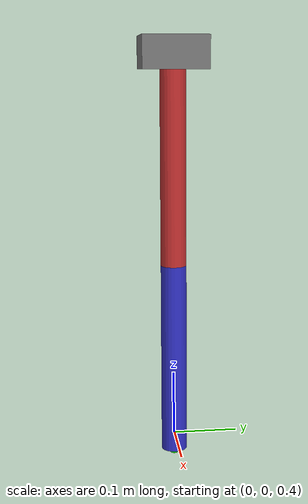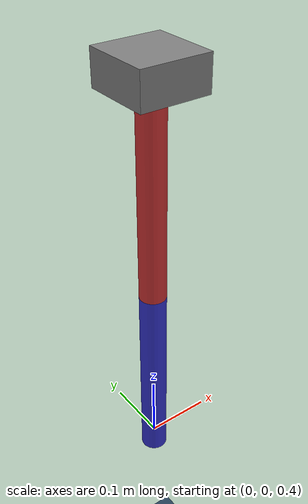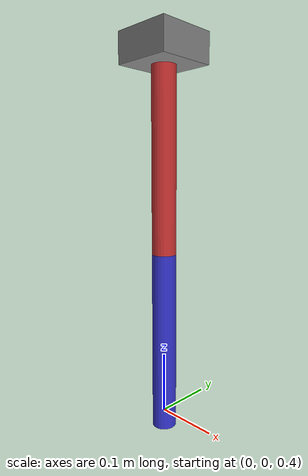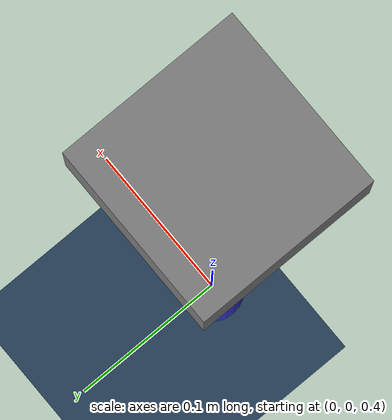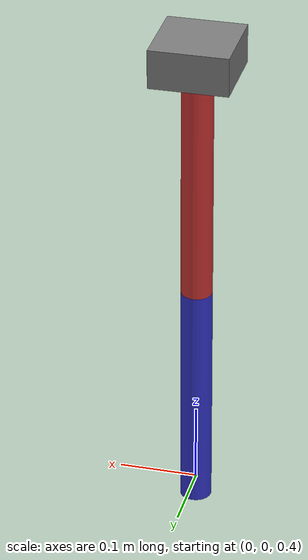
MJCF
<mujoco model="two_link_arm_scene">
  <include file="two_link_arm_v2.xml"/>

  <statistic center="0 0 0.6" extent="1.6"/>

  <visual>
    <headlight diffuse="0.6 0.6 0.6" ambient="0.3 0.3 0.3" specular="0 0 0"/>
    <global azimuth="140" elevation="-20"/>
  </visual>

  <asset>
    <texture type="2d" name="groundplane" builtin="checker" mark="edge" rgb1="0.2 0.3 0.4" rgb2="0.1 0.2 0.3"
             markrgb="0.8 0.8 0.8" width="300" height="300"/>
    <material name="groundplane" texture="groundplane" texuniform="true" texrepeat="5 5" reflectance="0.2"/>
  </asset>

  <worldbody>
    <light pos="0 0 2.5" dir="0 0 -1" directional="true"/>
    <camera name="side" pos="1.5 -1.5 0.8" xyaxes="1 1 0 0 0 1"/>
    <geom name="floor" type="plane" size="0 0 0.05" material="groundplane"/>
  </worldbody>
</mujoco>

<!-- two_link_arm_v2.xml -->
<mujoco model="two_link_arm_v2">

  <!-- compiler: angle=radian (URDF와 동일 단위), autolimits: range 를 주면 limited 자동 -->
  <compiler angle="radian" autolimits="true"/>

  <!-- option: 적분 주기 1 ms (관절 1 kHz 제어 주기와 맞춤), implicitfast 는 damping·armature 가 커도 안정 -->
  <option timestep="0.001" integrator="implicitfast" gravity="0 0 -9.81"/>

  <!-- default class: 같은 속성을 한 곳에서 관리. body 에 childclass="arm" 을 주면 자식 전체가 상속 -->
  <default>
    <default class="arm">
      <!-- 모든 관절: Y축 힌지, 점성 감쇠 0.1 N·m·s/rad. armature(로터 반영 관성)는 실험용으로 0 에서 시작 -->
      <joint type="hinge" axis="0 1 0" damping="0.1" armature="0" frictionloss="0"/>
      <!-- 링크 형상: 반지름 0.02 m · 반길이 0.15 m 실린더, 링크 프레임 -Z 로 늘어짐 -->
      <geom type="cylinder" size="0.02 0.15" pos="0 0 -0.15"/>
      <!-- visual / collision 분리 (4주차 STL 분리 대비): group 2 = 시각 전용, group 3 = 충돌 전용 -->
      <default class="visual">
        <geom contype="0" conaffinity="0" group="2"/>
      </default>
      <default class="collision">
        <geom group="3" rgba="0.6 0.6 0.6 0.3"/>
      </default>
      <!-- position 액추에이터 기본값: τ = kp·(ctrl − q) − kv·q̇, ctrlrange 는 joint range 상속, 토크 한계 ±25 N·m -->
      <position kp="20" kv="0" inheritrange="1" forcerange="-25 25"/>
    </default>
  </default>

  <worldbody>
    <!-- 천장 높이 1 m 에 고정된 베이스. 월드 고정 body 는 자식과 부모-자식 충돌 제외가 안 되므로 collision 없음 -->
    <body name="base_link" pos="0 0 1.0" childclass="arm">
      <geom class="visual" type="box" size="0.05 0.05 0.025" pos="0 0 0" rgba="0.5 0.5 0.5 1"/>
      <inertial pos="0 0 0" mass="5.0" diaginertia="0.01 0.01 0.01"/>

      <body name="upper_arm" pos="0 0 -0.025">
        <joint name="shoulder" range="-2.618 2.618"/>
        <geom class="visual"    rgba="0.8 0.2 0.2 1"/>
        <geom class="collision"/>
        <inertial pos="0 0 -0.15" mass="1.0" diaginertia="0.0075 0.0075 0.0002"/>

        <body name="forearm" pos="0 0 -0.3">
          <joint name="elbow" range="-1.047 2.094"/>
          <geom class="visual"    rgba="0.2 0.2 0.8 1"/>
          <geom class="collision"/>
          <inertial pos="0 0 -0.15" mass="1.0" diaginertia="0.0075 0.0075 0.0002"/>
          <!-- 팔 끝 site: 나중에 센서·그리퍼 attach 지점 -->
          <site name="tip" pos="0 0 -0.3" size="0.01" rgba="0 1 0 1"/>
        </body>
      </body>
    </body>
  </worldbody>

  <!-- 액추에이터: class="arm" 의 position 기본값(kp=20, kv=0, forcerange ±25) 을 상속 -->
  <actuator>
    <position name="shoulder_pos" joint="shoulder" class="arm"/>
    <position name="elbow_pos"    joint="elbow"    class="arm"/>
  </actuator>

  <!-- 센서: 관절각·각속도·액추에이터 토크 (data.sensordata 로 기록) -->
  <sensor>
    <jointpos name="shoulder_q"  joint="shoulder"/>
    <jointvel name="shoulder_qd" joint="shoulder"/>
    <actuatorfrc name="shoulder_tau" actuator="shoulder_pos"/>
  </sensor>
</mujoco>
